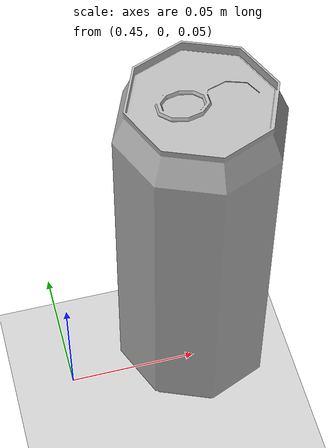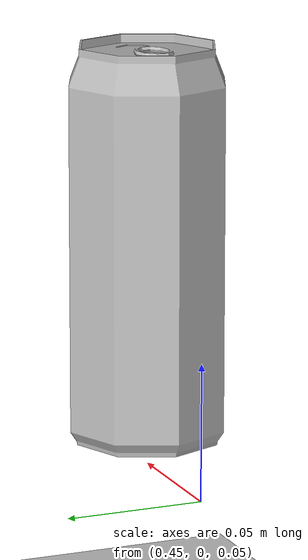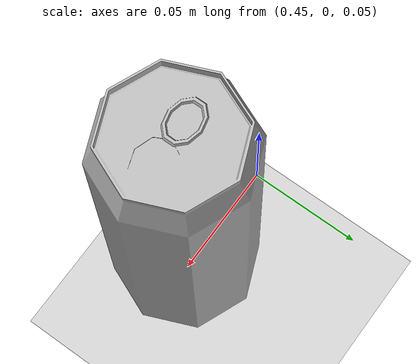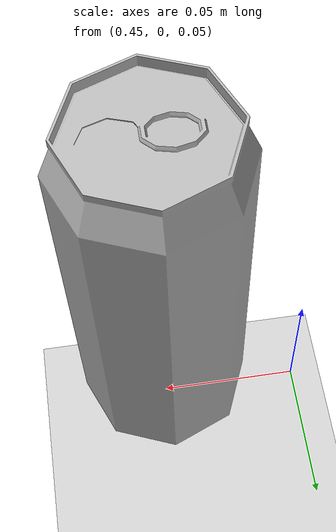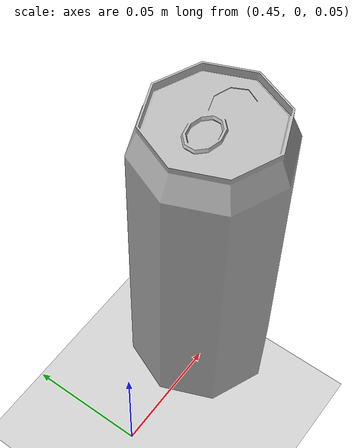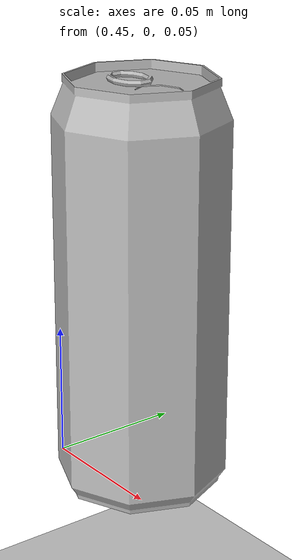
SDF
<?xml version="1.0" ?>
<sdf version="1.8">
  <world name="piper_world">

    <!-- Physics (like Piper: default plugin, no extra params) -->
    <plugin filename="gz-sim-physics-system" name="gz::sim::systems::Physics">
    </plugin>

    <!-- Scene -->
    <plugin filename="gz-sim-scene-broadcaster-system" name="gz::sim::systems::SceneBroadcaster">
    </plugin>

    <!-- User Commands (for interaction) -->
    <plugin filename="gz-sim-user-commands-system" name="gz::sim::systems::UserCommands">
    </plugin>

    <!-- Sensors (updates sensors + publishes sensor topics) -->
    <plugin filename="gz-sim-sensors-system" name="gz::sim::systems::Sensors">
      <render_engine>ogre2</render_engine>
    </plugin>

    <!-- Rendering -->
    <scene>
      <ambient>1.0 1.0 1.0</ambient>
      <background>0.8 0.8 0.8</background>
      <grid>false</grid>
    </scene>

    <!-- Lighting -->
    <light type="directional" name="sun">
      <cast_shadows>true</cast_shadows>
      <pose>0 0 10 0 0 0</pose>
      <diffuse>0.8 0.8 0.8 1</diffuse>
      <specular>0.2 0.2 0.2 1</specular>
      <attenuation>
        <range>1000</range>
        <constant>0.9</constant>
        <linear>0.01</linear>
        <quadratic>0.001</quadratic>
      </attenuation>
      <direction>-0.5 0.1 -0.9</direction>
    </light>

    <!-- Ground Plane (like Piper: no surface/friction) -->
    <model name="ground_plane">
      <static>true</static>
      <link name="link">
        <collision name="collision">
          <geometry>
            <plane>
              <normal>0 0 1</normal>
              <size>100 100</size>
            </plane>
          </geometry>
        </collision>
        <visual name="visual">
          <geometry>
            <plane>
              <normal>0 0 1</normal>
              <size>100 100</size>
            </plane>
          </geometry>
          <material>
            <ambient>0.8 0.8 0.8 1</ambient>
            <diffuse>0.8 0.8 0.8 1</diffuse>
            <specular>0.8 0.8 0.8 1</specular>
          </material>
        </visual>
      </link>
    </model>

    <!-- Coke: učitava se s worldom (model://Coke zahtijeva GZ_SIM_RESOURCE_PATH=.../model). -->
    <include>
      <uri>model://Coke</uri>
      <pose>0.5 0 0.06 0 0 0</pose>
      <name>Coke</name>
    </include>

  </world>
</sdf>

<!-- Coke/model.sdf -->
<sdf version="1.6">
  <model name='Coke'>
    <static>false</static>
    <link name="body">
      <pose>0 0 0 0 0 0</pose>
      <visual name="visual">
        <geometry>
          <mesh><uri>model://Coke/meshes/coke.obj</uri></mesh>
        </geometry>
      </visual>
      <collision name="collision">
        <geometry>
          <mesh><uri>model://Coke/meshes/coke.obj</uri></mesh>
        </geometry>
        <surface>
          <friction>
            <ode><mu>0.9</mu><mu2>0.9</mu2></ode>
            <bullet><friction>0.9</friction><friction2>0.9</friction2></bullet>
          </friction>
          <contact>
            <ode><kp>1e8</kp><kd>1</kd></ode>
            <bullet><kp>1e8</kp><kd>1</kd></bullet>
          </contact>
        </surface>
      </collision>
      <!-- Mass ~0.35 kg for a full can; inertia for cylinder r~0.03m h~0.12m -->
      <inertial>
        <mass>0.35</mass>
        <inertia>
          <ixx>0.0004</ixx>
          <ixy>0</ixy>
          <ixz>0</ixz>
          <iyy>0.0004</iyy>
          <iyz>0</iyz>
          <izz>0.00016</izz>
        </inertia>
      </inertial>
    </link>
  </model>
</sdf>
